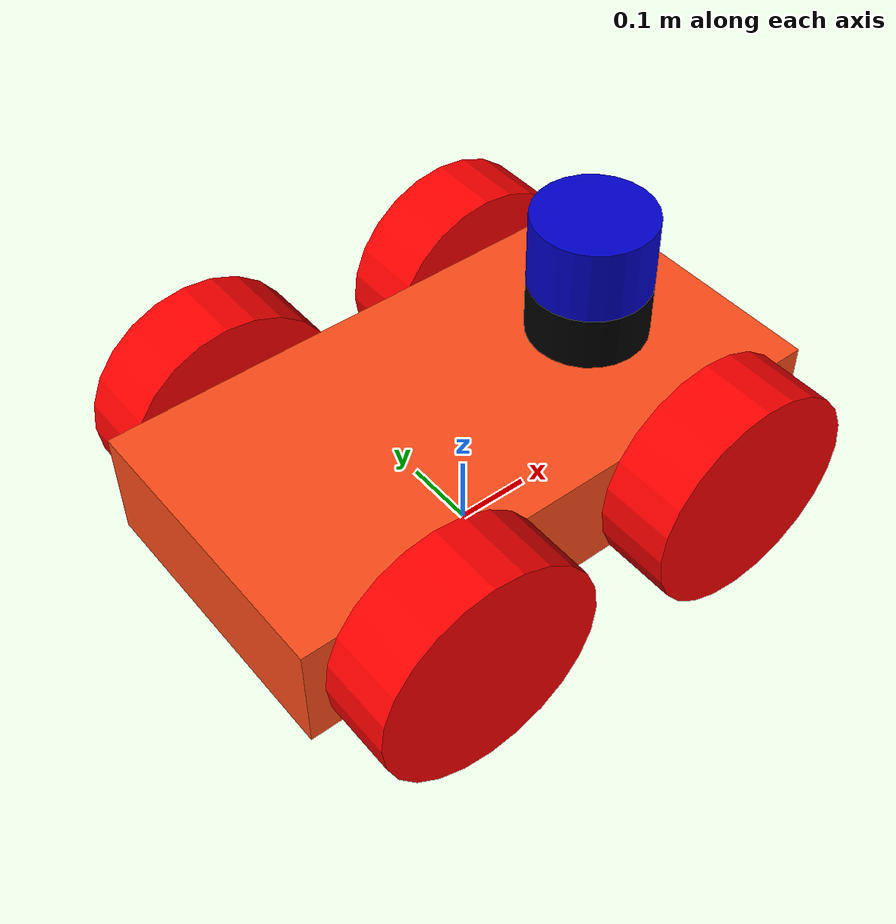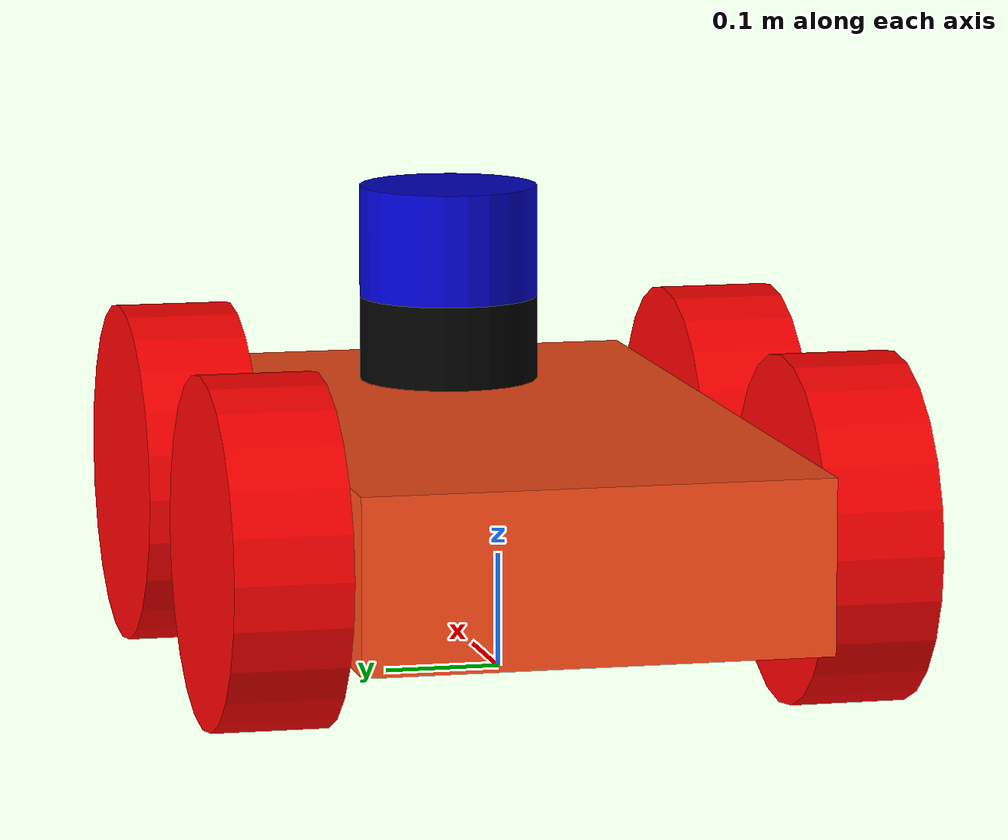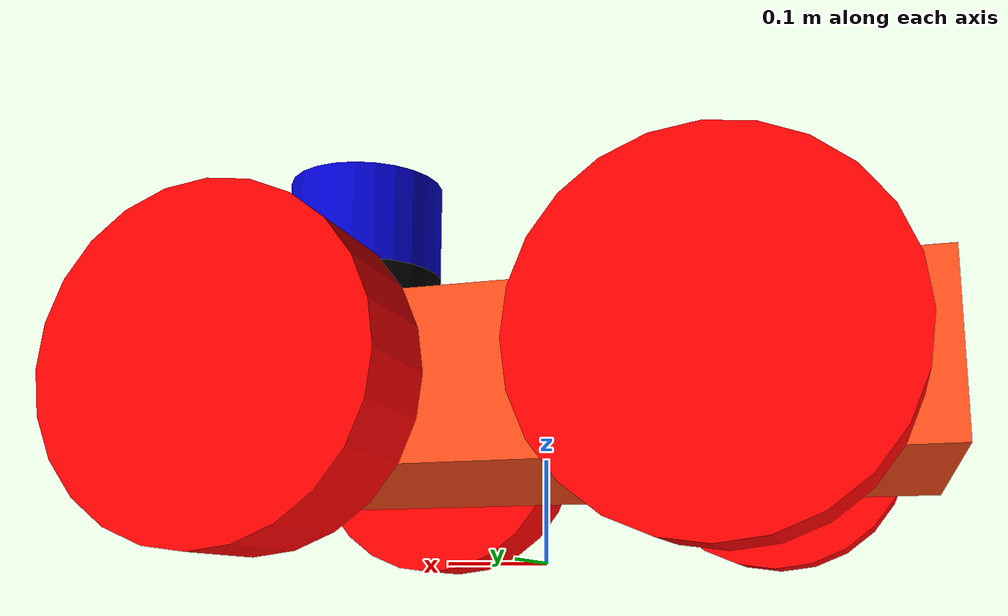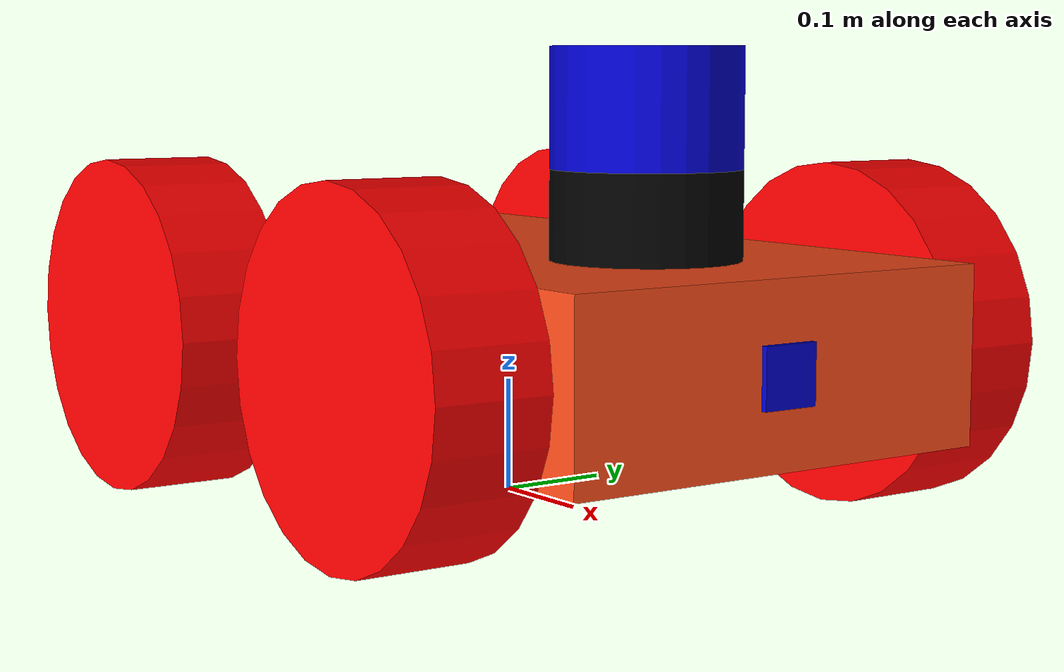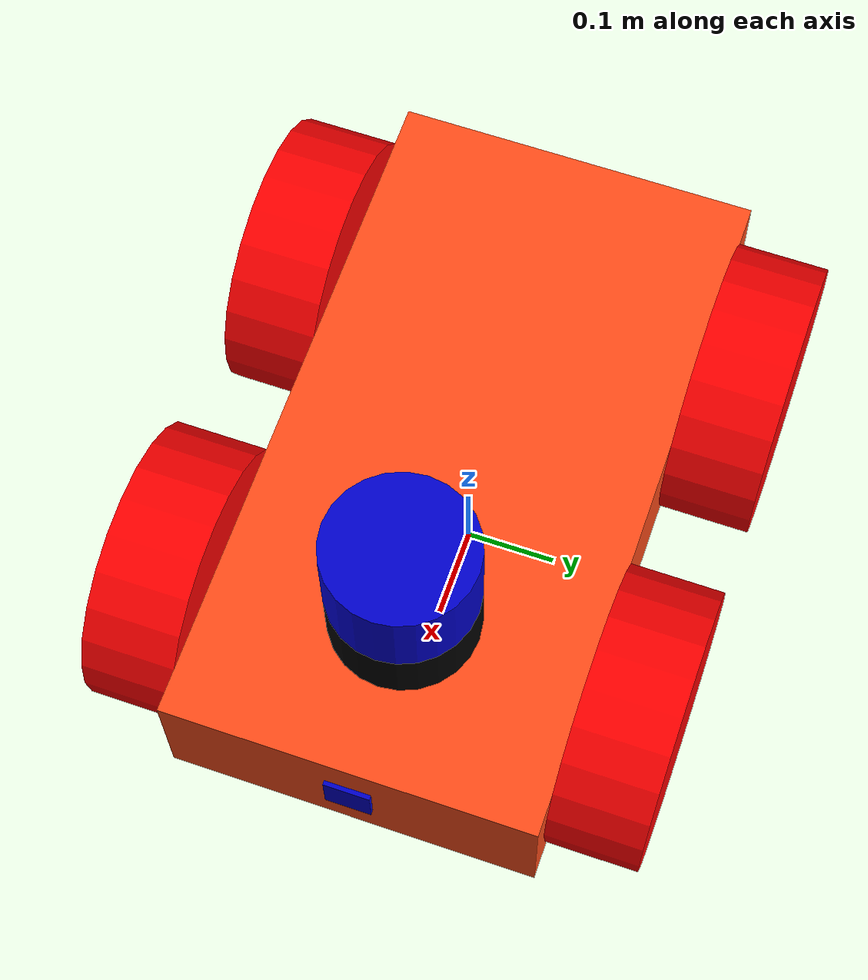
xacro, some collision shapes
<?xml version="1.0"?>
<robot xmlns:xacro="http://www.ros.org/wiki/xacro" name="">

    <xacro:property name="constant"         value = "0.083333333"/> #1/12
    <xacro:property name="chassis_mass"     value = "0.5"/>
    <xacro:property name="chassis_wheel"    value = "0.1"/>
    <xacro:property name="width"            value = "0.75"/>
    <xacro:property name="height"           value = "0.15"/>
    <xacro:property name="depth"            value = "0.4"/>
    <xacro:property name="wheel_radius"     value = "0.15"/>
    <xacro:property name="wheel_length"     value = "0.1"/>

    <!-- rover base link -->
    <link name="base_link">

    </link>

    <joint name="Chassis_joint" type="fixed">
        <parent link="base_link"/>
        <child link="Chassis"/>
        <origin xyz="0.0 0.0 0.0" rpy="0.0 0.0 0.0"/>
    </joint>

    <link name="Chassis">
        <visual>
            <origin xyz="0.0 0.0 ${height}" rpy="0.0 0.0 0.0"/>
            <geometry>
                <box size="${width} ${depth} ${height}" />
            </geometry>
            <material name="">
                <color rgba="1.0 0.3 0.1 1.0"/>
            </material>
        </visual>
        <collision>
            <origin xyz="0.0 0.0 ${height}" rpy="0.0 0.0 0.0"/>
            <geometry>
                <box size="${width} ${depth} ${height}" />
            </geometry>
        </collision>
        <inertial>
            <mass value="${chassis_mass}"/>
            <inertia ixx="${(constant) * (0.5 * (height*height + depth*depth))}" ixy="0.0" ixz="0.0"
                    iyy="${(constant) * (0.5 * (width*width + depth*depth))}" iyz="0.0"
                    izz="${(constant) * (0.5 * (width*width + height*height))}"/>
        </inertial>

    </link>

    <gazebo reference = "Chassis">
        <material> Gazebo/Orange </material>
    </gazebo>

    <!-- lidar link -->
    <joint name="lidar_joint" type="fixed">
        <parent link="mount_link"/>
        <child link="lidar_link"/>
        <origin xyz="0.0 0.0 0.1" rpy="0.0 0.0 0.0"/>
        <axis xyz="0.0 0.0 0.0"/>
    </joint>

    <link name="lidar_link">
        <visual>
            <geometry>
                <mesh filename="package://round_bot/mesh/lds.stl" scale="0.002 0.002 0.002"/>
            </geometry>
            <material name="">
                <color rgba="0.0 0.0 0.8 1.0"/>
            </material>
        </visual>
        <collision>
            <origin xyz="0.0 0.0 0.0" rpy="0.0 0.0 0.0"/>
            <geometry>
                <cylinder radius="0.08" length="0.1"/>
            </geometry>
        </collision>
        <inertial>
            <mass value="0.114"/>
            <origin xyz="0.0 0.0 0.0" rpy="0.0 0.0 0.0"/>
            <inertia ixx="0.001" ixy="0.0" ixz="0.0"
                    iyy="0.001" iyz="0.0"
                    izz="0.001" />
        </inertial>
    </link>

    <gazebo reference = "lidar_link">
        <sensor name = "lds_lfcd_sensor" type = "ray">
            <pose> 0 0 0 0 0 0 </pose>
            <visualize>false</visualize>
            <update_rate>50</update_rate>
            <ray>
                <scan>
                    <horizontal>
                        <samples>720</samples>
                        <resolution>1</resolution>
                        <min_angle>-3.14159</min_angle>  <!-- -180 degrees in radians -->
                        <max_angle>3.14159</max_angle>   <!-- 180 degrees in radians -->
                    </horizontal>
                </scan>
                <range>
                    <min>0.10</min>   <!-- Minimum range in meters -->
                    <max>30.0</max>   <!-- Maximum range in meters -->
                    <resolution>0.01</resolution>   <!-- Range resolution in meters -->
                </range>
                <noise>
                    <type>gaussian</type>
                    <mean>0.0</mean>
                    <stddev>0.01</stddev>
                </noise>
            </ray>
            <plugin name="gazebo_ros_lds_lfcd_controller" filename="libgazebo_ros_laser.so">
                <topicName>/scan</topicName>
                <frameName>lidar_link</frameName>
            </plugin>
        </sensor>
        <material> Gazebo/Blue </material>
    </gazebo>

    <joint name="mount_joint" type="fixed">
        <parent link="Chassis"/>
        <child link="mount_link"/>
        <origin xyz="0.2 0.0 0.25" rpy="0.0 0.0 0.0"/>
    </joint>

    <link name="mount_link">
        <visual>
            <geometry>
                <cylinder radius="0.08" length="0.1"/>
            </geometry>
            <material name="">
                <color rgba="0.0 0.0 0.0 1.0"/>
            </material>
        </visual>
        <collision>
            <geometry>
                <cylinder radius="0.08" length="0.1"/>
            </geometry>
        </collision>
    </link>

    <gazebo reference = "mount_link">
        <material> Gazebo/Black</material>
    </gazebo>

    <!-- camera/sensor mount -->
    <joint name="camera_joint" type="fixed">
        <parent link="Chassis"/>
        <child link="camera_link"/>
        <origin xyz="0.375 0.0 0.15" rpy="0.0 0.0 0.0"/>
    </joint>

    <link name="camera_link">
        <visual>
            <geometry>
                <box size="0.010 0.05 0.05"/>
            </geometry>
            <material name="">
                <color rgba="0.0 0.0 0.8 1.0"/>
            </material>
        </visual>
    </link>

    <joint name="camera_optical_joint" type="fixed">
        <parent link="camera_link"/>
        <child link="camera_link_optical"/>
        <origin xyz="0.0 0.0 0.0" rpy="-1.57 0.0 -1.57"/>
    </joint>

    <link name="camera_link_optical">

    </link>

    <gazebo reference = "camera_link">
        <material> Gazebo/Blue </material>
        <sensor name = "camera" type = "camera">
            <cameraName>my_bot/camera</cameraName>
            <pose> 0 0 0 0 0 0 </pose>
            <visualize> false </visualize>
            <update_rate> 10 </update_rate>
            <camera>
                <horizontal_fov> 1.809 </horizontal_fov>
                <image>
                    <format> R8G8B8 </format>
                    <width> 640 </width>
                    <height> 480 </height>
                </image>
                <clip>
                    <near> 0.05 </near>
                    <far> 8.0 </far>
                </clip>
            </camera>
            <plugin name = "camera_controller" filename = "libgazebo_ros_camera.so">
                <frame_name> camera_link_optical</frame_name>
            </plugin>
        </sensor>
    </gazebo>

    <link name = "front_left_wheel">
        <visual>
            <geometry>
                <cylinder length="${wheel_length}" radius="${wheel_radius}"/>
            </geometry>
            <material name="">
                <color rgba="1.0 0.0 0.0 1.0"/>
            </material>
        </visual>
        <collision>
            <geometry>
                <sphere radius="${wheel_radius}"/>
                <contact_coefficients mu="1" kp="1e+13" kd="1.0"/>
            </geometry>
        </collision>
        <inertial>
            <mass value="${chassis_wheel}" />
            <inertia ixx="${(constant) * 0.1 * (3*wheel_radius*wheel_radius + wheel_length*wheel_length)}" ixy="0.0" ixz="0.0"
            iyy="${(constant) * 0.1 * (3*wheel_radius*wheel_radius + wheel_length*wheel_length)}" iyz="0.0"
            izz="${0.5 * 0.1 * (wheel_radius*wheel_radius)}" /> #1/2

        </inertial>

    </link>
    <joint name="front_left_wheel_joint" type="continuous">
        <parent link="Chassis"/>
        <child link="front_left_wheel"/>
        <origin xyz="0.2 0.25 0.15" rpy="-1.57 0.0 0.0"/>
        <axis xyz="0.0 0.0 1.0"/>
        <dynamics damping="0"/>
        <limit effort="10000" velocity="1000"/>
    </joint>

    <!-- This block provides the simulator (Gazebo) with information on a few additional
    physical properties. See http://gazebosim.org/tutorials/?tut=ros_urdf for more-->
    <gazebo reference="front_left_wheel">
      <mu1 value="1"/>
      <mu2 value="1"/>
      <kp value="1000000.0" />
      <kd value="100.0" />
      <slip1 value="0.5" />
      <slip2 value="0.5" />
      <material>Gazebo/Red</material>
    </gazebo>

    <!-- This block connects the wheel joint to an actuator (motor), which informs both
    simulation and visualization of the robot -->
    <transmission name="front_left_wheel_trans">
      <type>transmission_interface/SimpleTransmission</type>
      <actuator name="front_left_wheel_motor">
        <hardwareInterface>hardware_interface/VelocityJointInterface</hardwareInterface>
        <mechanicalReduction>1</mechanicalReduction>
      </actuator>
      <joint name="front_left_wheel_joint">
        <hardwareInterface>hardware_interface/VelocityJointInterface</hardwareInterface>
      </joint>
    </transmission>

    <!-- front_right_wheel -->
    <link name = "front_right_wheel">
        <visual>
            <geometry>
                <cylinder length="${wheel_length}" radius="${wheel_radius}"/>
            </geometry>
            <material name="">
                <color rgba="1.0 0.0 0.0 1.0"/>
            </material>
        </visual>
        <collision>
            <geometry>
                <sphere radius="${wheel_radius}"/>
                <contact_coefficients mu="1" kp="1e+13" kd="1.0"/>
            </geometry>
        </collision>
        <inertial>
            <mass value="${chassis_wheel}" />
            <inertia ixx="${(constant) * 0.1 * (3*wheel_radius*wheel_radius + wheel_length*wheel_length)}" ixy="0.0" ixz="0.0"
            iyy="${(constant) * 0.1 * (3*wheel_radius*wheel_radius + wheel_length*wheel_length)}" iyz="0.0"
            izz="${0.5 * 0.1 * (wheel_radius*wheel_radius)}" /> #1/2

        </inertial>

    </link>
    <joint name="front_right_wheel_joint" type="continuous">
        <parent link="Chassis"/>
        <child link="front_right_wheel"/>
        <origin xyz="0.2 -0.25 0.15" rpy="1.57 0.0 0.0"/>
        <axis xyz="0.0 0.0 -1.0"/>
        <dynamics damping="0"/>
        <limit effort="10000" velocity="1000"/>
    </joint>

    <!-- This block provides the simulator (Gazebo) with information on a few additional
    physical properties. See http://gazebosim.org/tutorials/?tut=ros_urdf for more-->
    <gazebo reference="front_right_wheel">
      <mu1 value="1"/>
      <mu2 value="1"/>
      <kp value="1000000.0" />
      <kd value="100.0" />
      <slip1 value="0.5" />
      <slip2 value="0.5" />
      <material>Gazebo/Red</material>
    </gazebo>

    <!-- This block connects the wheel joint to an actuator (motor), which informs both
    simulation and visualization of the robot -->
    <transmission name="front_right_wheel_trans">
      <type>transmission_interface/SimpleTransmission</type>
      <actuator name="front_right_wheel_motor">
        <hardwareInterface>hardware_interface/VelocityJointInterface</hardwareInterface>
        <mechanicalReduction>1</mechanicalReduction>
      </actuator>
      <joint name="front_right_wheel_joint">
        <hardwareInterface>hardware_interface/VelocityJointInterface</hardwareInterface>
      </joint>
    </transmission>

    <link name = "rear_left_wheel">
        <visual>
            <geometry>
                <cylinder length="${wheel_length}" radius="${wheel_radius}"/>
            </geometry>
            <material name="">
                <color rgba="1.0 0.0 0.0 1.0"/>
            </material>
        </visual>
        <collision>
            <geometry>
                <sphere radius="${wheel_radius}"/>
                <contact_coefficients mu="1" kp="1e+13" kd="1.0"/>
            </geometry>
        </collision>
        <inertial>
            <mass value="${chassis_wheel}" />
            <inertia ixx="${(constant) * 0.1 * (3*wheel_radius*wheel_radius + wheel_length*wheel_length)}" ixy="0.0" ixz="0.0"
            iyy="${(constant) * 0.1 * (3*wheel_radius*wheel_radius + wheel_length*wheel_length)}" iyz="0.0"
            izz="${0.5 * 0.1 * (wheel_radius*wheel_radius)}" /> #1/2

        </inertial>

    </link>
    <joint name="rear_left_wheel_joint" type="continuous">
        <parent link="Chassis"/>
        <child link="rear_left_wheel"/>
        <origin xyz="-0.2 0.25 0.15" rpy="-1.57 0.0 0.0"/>
        <axis xyz="0.0 0.0 1.0"/>
        <dynamics damping="0"/>
        <limit effort="10000" velocity="1000"/>
    </joint>

    <!-- This block provides the simulator (Gazebo) with information on a few additional
    physical properties. See http://gazebosim.org/tutorials/?tut=ros_urdf for more-->
    <gazebo reference="rear_left_wheel">
      <mu1 value="1"/>
      <mu2 value="1"/>
      <kp value="1000000.0" />
      <kd value="100.0" />
      <slip1 value="0.5" />
      <slip2 value="0.5" />
      <material>Gazebo/Red</material>
    </gazebo>

    <!-- This block connects the wheel joint to an actuator (motor), which informs both
    simulation and visualization of the robot -->
    <transmission name="rear_left_wheel_trans">
      <type>transmission_interface/SimpleTransmission</type>
      <actuator name="rear_left_wheel_motor">
        <hardwareInterface>hardware_interface/VelocityJointInterface</hardwareInterface>
        <mechanicalReduction>1</mechanicalReduction>
      </actuator>
      <joint name="rear_left_wheel_joint">
        <hardwareInterface>hardware_interface/VelocityJointInterface</hardwareInterface>
      </joint>
    </transmission>

    <link name = "rear_right_wheel">
        <visual>
            <geometry>
                <cylinder length="${wheel_length}" radius="${wheel_radius}"/>
            </geometry>
            <material name="">
                <color rgba="1.0 0.0 0.0 1.0"/>
            </material>
        </visual>
        <collision>
            <geometry>
                <sphere radius="${wheel_radius}"/>
                <contact_coefficients mu="1" kp="1e+13" kd="1.0"/>
            </geometry>
        </collision>
        <inertial>
            <mass value="${chassis_wheel}" />
            <inertia ixx="${(constant) * 0.1 * (3*wheel_radius*wheel_radius + wheel_length*wheel_length)}" ixy="0.0" ixz="0.0"
            iyy="${(constant) * 0.1 * (3*wheel_radius*wheel_radius + wheel_length*wheel_length)}" iyz="0.0"
            izz="${0.5 * 0.1 * (wheel_radius*wheel_radius)}" /> #1/2

        </inertial>

    </link>
    <joint name="rear_right_wheel_joint" type="continuous">
        <parent link="Chassis"/>
        <child link="rear_right_wheel"/>
        <origin xyz="-0.2 -0.25 0.15" rpy="1.57 0.0 0.0"/>
        <axis xyz="0.0 0.0 -1.0"/>
        <dynamics damping="0"/>
        <limit effort="10000" velocity="1000"/>
    </joint>

    <!-- This block provides the simulator (Gazebo) with information on a few additional
    physical properties. See http://gazebosim.org/tutorials/?tut=ros_urdf for more-->
    <gazebo reference="rear_right_wheel">
      <mu1 value="1"/>
      <mu2 value="1"/>
      <kp value="1000000.0" />
      <kd value="100.0" />
      <slip1 value="0.5" />
      <slip2 value="0.5" />
      <material>Gazebo/Red</material>
    </gazebo>

    <!-- This block connects the wheel joint to an actuator (motor), which informs both
    simulation and visualization of the robot -->
    <transmission name="rear_right_wheel_trans">
      <type>transmission_interface/SimpleTransmission</type>
      <actuator name="rear_right_wheel_motor">
        <hardwareInterface>hardware_interface/VelocityJointInterface</hardwareInterface>
        <mechanicalReduction>1</mechanicalReduction>
      </actuator>
      <joint name="rear_right_wheel_joint">
        <hardwareInterface>hardware_interface/VelocityJointInterface</hardwareInterface>
      </joint>
    </transmission>

</robot>
